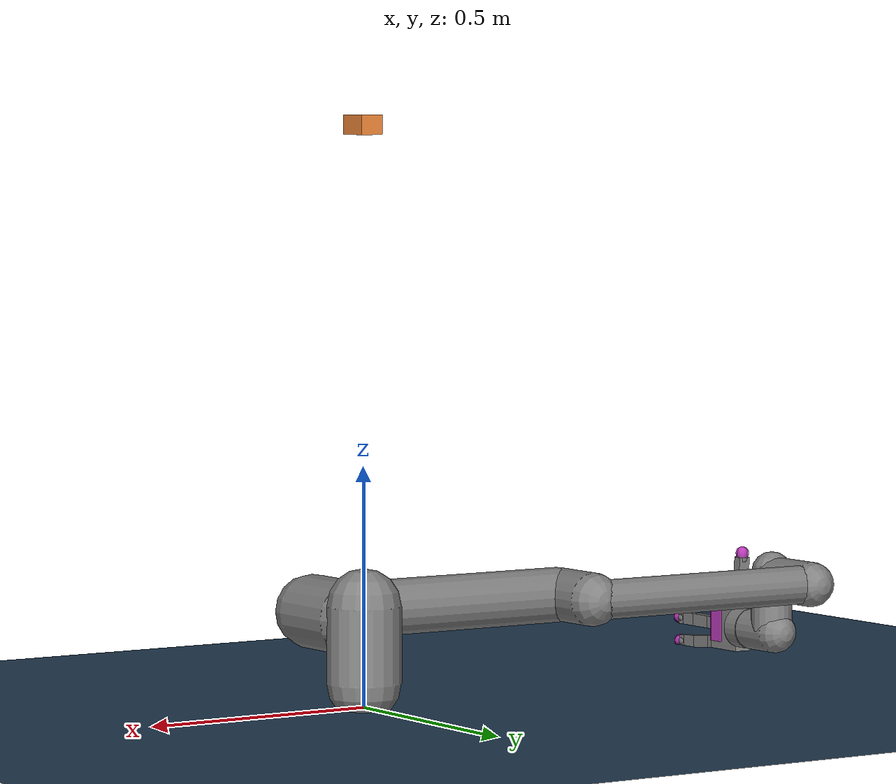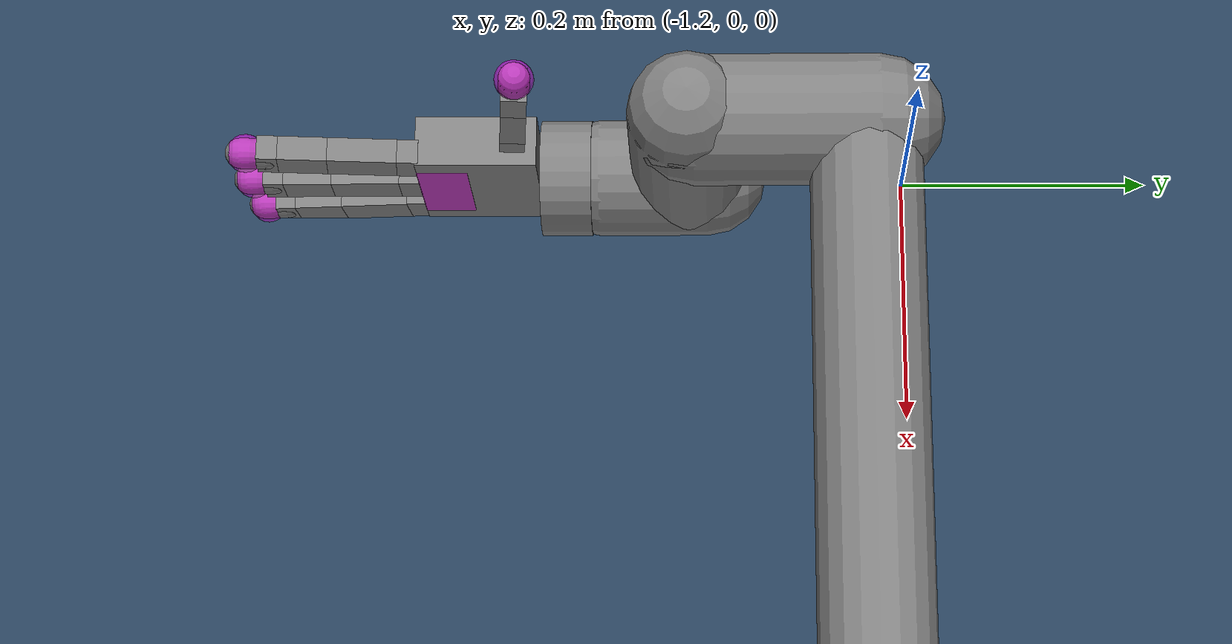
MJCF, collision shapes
<mujoco model="ur10e and Allegro hand scene">
  <compiler angle="radian" meshdir="../assets/" autolimits="true" inertiafromgeom="true" balanceinertia="true"/>
  <extension>
  <!-- If your Python wheel already ships plugins this line is enough: -->
  <plugin plugin="mujoco.sensor.touch_grid"/>

  <!-- If you ever see “unknown plugin …touch_grid”, specify the library: -->
</extension>
  <sensor>
  <!-- Fingertip grid: 8x8, force channels (Fz, Fx, Fy) -->
  <plugin name="ff_tip_grid"
          plugin="mujoco.sensor.touch_grid"
          objtype="site" objname="ff_tip_grid_site">
    <config key="nchannel" value="3"/>    <!-- (z, x, y) = normal + two tangents -->
    <config key="size"     value="20 20"/>  <!-- resolution nx ny -->
    <config key="fov"      value="180 90"/> <!-- degrees; small ≈ planar patch -->
    <config key="gamma"    value="0"/>    <!-- foveal deformation (0 = uniform) -->
  </plugin>

    <plugin name="mf_tip_grid"
          plugin="mujoco.sensor.touch_grid"
          objtype="site" objname="mf_tip_grid_site">
    <config key="nchannel" value="3"/>    <!-- (z, x, y) = normal + two tangents -->
    <config key="size"     value="20 20"/>  <!-- resolution nx ny -->
    <config key="fov"      value="180 90"/> <!-- degrees; small ≈ planar patch -->
    <config key="gamma"    value="0"/>    <!-- foveal deformation (0 = uniform) -->
  </plugin>

    <plugin name="rf_tip_grid"
          plugin="mujoco.sensor.touch_grid"
          objtype="site" objname="rf_tip_grid_site">
    <config key="nchannel" value="3"/>    <!-- (z, x, y) = normal + two tangents -->
    <config key="size"     value="20 20"/>  <!-- resolution nx ny -->
    <config key="fov"      value="180 90"/> <!-- degrees; small ≈ planar patch -->
    <config key="gamma"    value="0"/>    <!-- foveal deformation (0 = uniform) -->
  </plugin>

    <plugin name="th_tip_grid"
          plugin="mujoco.sensor.touch_grid"
          objtype="site" objname="th_tip_grid_site">
    <config key="nchannel" value="3"/>    <!-- (z, x, y) = normal + two tangents -->
    <config key="size"     value="20 20"/>  <!-- resolution nx ny -->
    <config key="fov"      value="180 90"/> <!-- degrees; small ≈ planar patch -->
    <config key="gamma"    value="0"/>    <!-- foveal deformation (0 = uniform) -->
  </plugin>

  <!-- Palm grid: coarser, just normal force to start -->
  <plugin name="palm_grid"
          plugin="mujoco.sensor.touch_grid"
          objtype="site" objname="palm_grid_site">
    <config key="nchannel" value="3"/>    <!-- just Fz (normal) -->
    <config key="size"     value="20 40"/> <!-- wider than tall -->
    <config key="fov"      value="180 90"/>
    <config key="gamma"    value="0"/>
  </plugin>
</sensor>

  <include file="../assets/ur10e/ur10e.xml"/>
  <include file="../assets/allegro/right_hand.xml"/>
  <statistic center="0.4 0 0.4" extent="1"/>

  <visual>
    <headlight diffuse="0.6 0.6 0.6" ambient="0.1 0.1 0.1" specular="0 0 0"/>
    <rgba haze="0.15 0.25 0.35 1"/>
    <global azimuth="120" elevation="-20"/>
  </visual>

  <asset>
    <texture type="skybox" builtin="gradient" rgb1="0.3 0.5 0.7" rgb2="0 0 0" width="512" height="3072"/>
    <texture type="2d" name="groundplane" builtin="checker" mark="edge" rgb1="0.2 0.3 0.4" rgb2="0.1 0.2 0.3"
      markrgb="0.8 0.8 0.8" width="300" height="300"/>
    <material name="groundplane" texture="groundplane" texuniform="true" texrepeat="5 5" reflectance="0.2"/>
  </asset>

  <!-- Soft-ish contact defaults (a little squish & friction) -->
  <default>
    <default class="soft_obj">
      <!-- Contact softness: tune these to taste -->
      <geom condim="3" solref="0.006 1" solimp="0.8 0.8 0.01"
            margin="0.002"
            friction="1.0 0.2 0.0001"
            density="200" rgba="0.9 0.5 0.2 1"/>
    </default>
  </default>

  <worldbody>
    <light pos="0 0 1.5" dir="0 0 -1" directional="true"/>
    <geom name="floor" size="0 0 0.05" type="plane" material="groundplane"/>
    <!-- A small box we'll place above the palm at runtime -->
    <body name="grocery_box" pos="0 0 1.2">
      <joint name="grocery_box_free" type="free" damping="0.1"/>
      <geom name="grocery_geom" class="soft_obj" type="box" mass="0.4" size="0.025 0.035 0.02"/>
    <!-- half-sizes: 25×35×20 mm -->
    </body>
  </worldbody>

  <equality>
    <weld body1="wrist_3_link" body2="palm" solimp="0.99 0.99 0.01" solref="0.001 1"/>
  </equality>

</mujoco>

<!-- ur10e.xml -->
<mujoco model="ur10e">
  <option integrator="implicitfast"/>
  <default>
    <default class="ur10e">
      <material specular="0.5" shininess="0.25"/>
      <joint axis="0 1 0" range="-6.28319 6.28319" armature="0.1"/>
      <position ctrlrange="-6.2831 6.2831"/>
      <general biastype="affine" ctrlrange="-6.2831 6.2831" gainprm="5000" biasprm="0 -5000 -500"/>
      <default class="size4">
        <joint damping="10"/>
        <general forcerange="-330 330"/>
      </default>
      <default class="size3">
        <joint damping="5"/>
        <general forcerange="-150 150"/>
        <default class="size3_limited">
          <joint range="-3.1415 3.1415"/>
          <general ctrlrange="-3.1415 3.1415"/>
        </default>
      </default>
      <default class="size2">
        <joint damping="2"/>
        <general forcerange="-56 56"/>
      </default>
      <default class="visual">
        <geom type="mesh" contype="0" conaffinity="0" group="2"/>
      </default>
      <default class="collision">
        <geom type="capsule" group="3"/>
        <default class="eef_collision">
          <geom type="cylinder"/>
        </default>
      </default>
      <site size="0.001" rgba="0.5 0.5 0.5 0.3" group="4"/>
    </default>
  </default>

  <asset>
    <material class="ur10e" name="black" rgba="0.033 0.033 0.033 1"/>
    <material class="ur10e" name="jointgray" rgba="0.278 0.278 0.278 1"/>
    <material class="ur10e" name="linkgray" rgba="0.82 0.82 0.82 1"/>
    <material class="ur10e" name="urblue" rgba="0.49 0.678 0.8 1"/>

    <mesh file="../ur10e/assets/base_0.obj"/>
    <mesh file="../ur10e/assets/base_1.obj"/>
    <mesh file="../ur10e/assets/shoulder_0.obj"/>
    <mesh file="../ur10e/assets/shoulder_1.obj"/>
    <mesh file="../ur10e/assets/shoulder_2.obj"/>
    <mesh file="../ur10e/assets/upperarm_0.obj"/>
    <mesh file="../ur10e/assets/upperarm_1.obj"/>
    <mesh file="../ur10e/assets/upperarm_2.obj"/>
    <mesh file="../ur10e/assets/upperarm_3.obj"/>
    <mesh file="../ur10e/assets/forearm_0.obj"/>
    <mesh file="../ur10e/assets/forearm_1.obj"/>
    <mesh file="../ur10e/assets/forearm_2.obj"/>
    <mesh file="../ur10e/assets/forearm_3.obj"/>
    <mesh file="../ur10e/assets/wrist1_0.obj"/>
    <mesh file="../ur10e/assets/wrist1_1.obj"/>
    <mesh file="../ur10e/assets/wrist1_2.obj"/>
    <mesh file="../ur10e/assets/wrist2_0.obj"/>
    <mesh file="../ur10e/assets/wrist2_1.obj"/>
    <mesh file="../ur10e/assets/wrist2_2.obj"/>
    <mesh file="../ur10e/assets/wrist3.obj"/>
  </asset>

  <worldbody>
    <light name="spotlight" mode="targetbodycom" target="wrist_2_link" pos="0 -1 2"/>
    <body name="base" quat="0 0 0 -1" childclass="ur10e">
      <site name="base_axis" pos="0 0 0" size="0.01" rgba="1 1 1 0"/>
      <inertial mass="4.0" pos="0 0 0" diaginertia="0.0061063308908 0.0061063308908 0.01125"/>
      <geom mesh="base_0" material="black" class="visual"/>
      <geom mesh="base_1" material="jointgray" class="visual"/>
      <body name="shoulder_link" pos="0 0 0.181">
        <inertial pos="0 0 0" mass="7.778" diaginertia="0.0314743 0.0314743 0.0218756"/>
        <joint name="shoulder_pan_joint" class="size4" axis="0 0 1"/>
        <geom mesh="shoulder_0" material="urblue" class="visual"/>
        <geom mesh="shoulder_1" material="black" class="visual"/>
        <geom mesh="shoulder_2" material="jointgray" class="visual"/>
        <geom class="collision" size="0.078 0.08" pos="0 0 -0.05"/>
        <body name="upper_arm_link" pos="0 0.176 0" quat="1 0 1 0">
          <inertial pos="0 0 0.3065" mass="12.93" diaginertia="0.423074 0.423074 0.0363656"/>
          <joint name="shoulder_lift_joint" class="size4"/>
          <geom mesh="upperarm_0" material="black" class="visual"/>
          <geom mesh="upperarm_1" material="jointgray" class="visual"/>
          <geom mesh="upperarm_2" material="urblue" class="visual"/>
          <geom mesh="upperarm_3" material="linkgray" class="visual"/>
          <geom class="collision" pos="0 -0.05 0" quat="1 1 0 0" size="0.078 0.08"/>
          <geom class="collision" size="0.06 0.3" pos="0 0 0.3"/>
          <body name="forearm_link" pos="0 -0.137 0.613">
            <inertial pos="0 0 0.2855" mass="3.87" diaginertia="0.11059 0.11059 0.0108844"/>
            <joint name="elbow_joint" class="size3_limited"/>
            <geom mesh="forearm_0" material="urblue" class="visual"/>
            <geom mesh="forearm_1" material="black" class="visual"/>
            <geom mesh="forearm_2" material="jointgray" class="visual"/>
            <geom mesh="forearm_3" material="linkgray" class="visual"/>
            <geom class="collision" pos="0 0.08 0" quat="1 1 0 0" size="0.058 0.065"/>
            <geom class="collision" size="0.043 0.28" pos="0 0 0.29"/>
            <body name="wrist_1_link" pos="0 0 0.571" quat="1 0 1 0">
              <inertial pos="0 0.135 0" quat="0.5 0.5 -0.5 0.5" mass="1.96"
                diaginertia="0.0055125 0.00510825 0.00510825"/>
              <joint name="wrist_1_joint" class="size2"/>
              <geom mesh="wrist1_0" material="black" class="visual"/>
              <geom mesh="wrist1_1" material="urblue" class="visual"/>
              <geom mesh="wrist1_2" material="jointgray" class="visual"/>
              <geom class="collision" pos="0 0.06 0" quat="1 1 0 0" size="0.05 0.07"/>
              <body name="wrist_2_link" pos="0 0.135 0">
                <inertial pos="0 0 0.12" quat="0.5 0.5 -0.5 0.5" mass="1.96"
                  diaginertia="0.0055125 0.00510825 0.00510825"/>
                <joint name="wrist_2_joint" axis="0 0 1" class="size2"/>
                <geom mesh="wrist2_0" material="black" class="visual"/>
                <geom mesh="wrist2_1" material="urblue" class="visual"/>
                <geom mesh="wrist2_2" material="jointgray" class="visual"/>
                <geom class="collision" size="0.046 0.065" pos="0 0 0.05"/>
                <geom class="collision" pos="0 0.028 0.12" quat="1 1 0 0" size="0.046 0.043"/>
                <body name="wrist_3_link" pos="0 0 0.12">
                  <site name="wrist_axis" pos="0 0 0" size="0.01" rgba="1 1 1 0"/>
                  <inertial pos="0 0.092 0" quat="0 1 -1 0" mass="0.202"
                    diaginertia="0.000204525 0.000144346 0.000144346"/>
                  <joint name="wrist_3_joint" class="size2"/>
                  <geom material="linkgray" mesh="wrist3" class="visual"/>
                  <geom class="eef_collision" pos="0 0.097 0" quat="1 1 0 0" size="0.046 0.02"/>
                  <site name="attachment_site" pos="0 0.1 0" quat="-1 1 0 0"/>
                </body>
              </body>
            </body>
          </body>
        </body>
      </body>
    </body>
  </worldbody>

  <!-- Excluir colisiones entre eslabones consecutivos -->
  <contact>
    <exclude body1="base"           body2="shoulder_link"/>
    <exclude body1="shoulder_link"  body2="upper_arm_link"/>
    <exclude body1="upper_arm_link" body2="forearm_link"/>
    <exclude body1="forearm_link"   body2="wrist_1_link"/>
    <exclude body1="wrist_1_link"   body2="wrist_2_link"/>
    <exclude body1="wrist_2_link"   body2="wrist_3_link"/>
  </contact>

  <actuator>
    <general class="size4" name="shoulder_pan" joint="shoulder_pan_joint"/>
    <general class="size4" name="shoulder_lift" joint="shoulder_lift_joint"/>
    <general class="size3_limited" name="elbow" joint="elbow_joint"/>
    <general class="size2" name="wrist_1" joint="wrist_1_joint"/>
    <general class="size2" name="wrist_2" joint="wrist_2_joint"/>
    <general class="size2" name="wrist_3" joint="wrist_3_joint"/>
  </actuator>

</mujoco>

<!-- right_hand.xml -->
<mujoco model="allegro_right">
  <!-- Match your repo layout (included from mj/full_combined.xml) -->
  <compiler angle="radian" meshdir="../assets/allegro/assets/" autolimits="true"/>

  <option cone="elliptic" impratio="10"/>

  <!-- Defaults: all Allegro-specific classes are prefixed algr_* to avoid collisions -->
  <default>
    <default class="allegro_right">
      <joint axis="0 1 0" damping=".1"/>
      <position kp="1"/>
      <geom density="800"/>

      <!-- Visual defaults (renamed) -->
      <default class="algr_visual">
        <geom type="mesh" contype="0" conaffinity="0" group="2" material="algr_black"/>
        <default class="algr_palm_visual">
          <geom mesh="base_link"/>
        </default>
        <default class="algr_base_visual">
          <geom mesh="link_0.0"/>
        </default>
        <default class="algr_proximal_visual">
          <geom mesh="link_1.0"/>
        </default>
        <default class="algr_medial_visual">
          <geom mesh="link_2.0"/>
        </default>
        <default class="algr_distal_visual">
          <geom mesh="link_3.0"/>
        </default>
        <default class="algr_fingertip_visual">
          <geom pos="0 0 0.0267" material="algr_white" mesh="link_3.0_tip"/>
        </default>
        <default class="algr_thumbtip_visual">
          <geom pos="0 0 0.0423" material="algr_white" mesh="link_15.0_tip"/>
        </default>
      </default>

      <!-- Collision defaults (renamed) -->
      <default class="algr_collision">
        <geom group="3" type="box" mass="0"/>
        <default class="algr_palm_collision">
          <geom size="0.0204 0.0565 0.0475" pos="-0.0093 0 -0.0475"/>
        </default>
        <default class="algr_base_collision">
          <geom size="0.0098 0.01375 0.0082" pos="0 0 0.0082"/>
          <default class="algr_thumb_base_collision">
            <geom size="0.0179 0.017 0.02275" pos="-0.0179 0.009 0.0145"/>
          </default>
        </default>
        <default class="algr_proximal_collision">
          <geom size="0.0098 0.01375 0.027" pos="0 0 0.027"/>
          <default class="algr_thumb_proximal_collision">
            <geom size="0.0098 0.01375 0.00885" pos="0 0 0.00885"/>
          </default>
        </default>
        <default class="algr_medial_collision">
          <geom size="0.0098 0.01375 0.0192" pos="0 0 0.0192"/>
          <default class="algr_thumb_medial_collision">
            <geom size="0.0098 0.01375 0.0257" pos="0 0 0.0257"/>
          </default>
        </default>
        <default class="algr_distal_collision">
          <geom size="0.0098 0.01375 0.008" pos="0 0 0.008"/>
          <default class="algr_thumb_distal_collision">
            <geom size="0.0098 0.01375 0.0157" pos="0 0 0.0157"/>
          </default>
        </default>
        <default class="algr_fingertip_collision">
          <geom type="capsule" size="0.012 0.01" pos="0 0 0.019"/>
          <default class="algr_thumbtip_collision">
            <geom type="capsule" size="0.012 0.008" pos="0 0 0.035"/>
          </default>
        </default>
      </default>

      <!-- These actuator/joint default classes don't collide with UR; keep as-is -->
      <default class="base">
        <joint axis="0 0 1" range="-0.47 0.47"/>
        <position ctrlrange="-0.47 0.47"/>
      </default>
      <default class="proximal">
        <joint range="-0.196 1.61"/>
        <position ctrlrange="-0.196 1.61"/>
      </default>
      <default class="medial">
        <joint range="-0.174 1.709"/>
        <position ctrlrange="-0.174 1.709"/>
      </default>
      <default class="distal">
        <joint range="-0.227 1.618"/>
        <position ctrlrange="-0.227 1.618"/>
      </default>
      <default class="thumb_base">
        <joint axis="-1 0 0" range="0.263 1.396"/>
        <position ctrlrange="0.263 1.396"/>
      </default>
      <default class="thumb_proximal">
        <joint axis="0 0 1" range="-0.105 1.163"/>
        <position ctrlrange="-0.105 1.163"/>
      </default>
      <default class="thumb_medial">
        <joint range="-0.189 1.644"/>
        <position ctrlrange="-0.189 1.644"/>
      </default>
      <default class="thumb_distal">
        <joint range="-0.162 1.719"/>
        <position ctrlrange="-0.162 1.719"/>
      </default>
    </default>
  </default>

  <!-- Unique material names to avoid conflicts with UR's "black"/"white" -->
  <asset>
    <material name="algr_black" rgba="0.2 0.2 0.2 1"/>
    <material name="algr_white" rgba="0.9 0.9 0.9 1"/>

    <mesh file="../allegro/assets/base_link.stl"/>
    <mesh file="../allegro/assets/link_0.0.stl"/>
    <mesh file="../allegro/assets/link_1.0.stl"/>
    <mesh file="../allegro/assets/link_2.0.stl"/>
    <mesh file="../allegro/assets/link_3.0.stl"/>
    <mesh file="../allegro/assets/link_3.0_tip.stl"/>
    <mesh file="../allegro/assets/link_12.0_right.stl"/>
    <mesh file="../allegro/assets/link_13.0.stl"/>
    <mesh file="../allegro/assets/link_14.0.stl"/>
    <mesh file="../allegro/assets/link_15.0.stl"/>
    <mesh file="../allegro/assets/link_15.0_tip.stl"/>
  </asset>

  <worldbody>
    <body name="palm" pos="-1.184000 -0.388000 0.061000" quat="0.707107 0.707107 0.000000 0.000000" childclass="allegro_right">
      <site name="palm_axis" pos="0 0 0" size="0.01" rgba="1 1 1 0"/>
      <site name="palm_grid_site"
      type="box" size="0.02 0.04 0.002"
      pos="0.01 0.0 -0.02"
      quat="0.70710678 0 0.70710678 0"
      rgba="1 0 1 0.5"/>
      <joint name="palm_free" type="free"/>
      <geom class="algr_palm_visual"/>
      <geom class="algr_palm_collision"/>

      <!-- First finger -->
      <body name="ff_base" pos="0 0.0435 -0.001542" quat="0.999048 -0.0436194 0 0">
        <joint name="ffj0" class="base"/>
        <geom class="algr_base_visual"/>
        <geom class="algr_base_collision"/>
        <body name="ff_proximal" pos="0 0 0.0164">
          <joint name="ffj1" class="proximal"/>
          <geom class="algr_proximal_visual"/>
          <geom class="algr_proximal_collision"/>
          <body name="ff_medial" pos="0 0 0.054">
            <joint name="ffj2" class="medial"/>
            <geom class="algr_medial_visual"/>
            <geom class="algr_medial_collision"/>
            <body name="ff_distal" pos="0 0 0.0384">
              <joint name="ffj3" class="distal"/>
              <geom class="algr_distal_visual"/>
              <geom class="algr_distal_collision"/>
              <body name="ff_tip">
                <site name="ff_tip_grid_site"
                  pos="0 0 0.025"
                  quat="1 0 0 0"
                  type="sphere" size="0.015"
                  rgba="1 0 1 0.5"/>
                <geom class="algr_fingertip_visual"/>
                <geom class="algr_fingertip_collision"/>
              </body>
            </body>
          </body>
        </body>
      </body>

      <!-- Middle finger -->
      <body name="mf_base" pos="0 0 0.0007">
        <joint name="mfj0" class="base"/>
        <geom class="algr_base_visual"/>
        <geom class="algr_base_collision"/>
        <body name="mf_proximal" pos="0 0 0.0164">
          <joint name="mfj1" class="proximal"/>
          <geom class="algr_proximal_visual"/>
          <geom class="algr_proximal_collision"/>
          <body name="mf_medial" pos="0 0 0.054">
            <joint name="mfj2" class="medial"/>
            <geom class="algr_medial_visual"/>
            <geom class="algr_medial_collision"/>
            <body name="mf_distal" pos="0 0 0.0384">
              <joint name="mfj3" class="distal"/>
              <geom class="algr_distal_visual"/>
              <geom class="algr_distal_collision"/>
              <body name="mf_tip">
                <site name="mf_tip_grid_site"
                  pos="0 0 0.025"
                  quat="1 0 0 0"
                  type="sphere" size="0.015"
                  rgba="1 0 1 0.5"/>
                <geom class="algr_fingertip_visual"/>
                <geom class="algr_fingertip_collision"/>
              </body>
            </body>
          </body>
        </body>
      </body>

      <!-- Ring finger -->
      <body name="rf_base" pos="0 -0.0435 -0.001542" quat="0.999048 0.0436194 0 0">
        <joint name="rfj0" class="base"/>
        <geom class="algr_base_visual"/>
        <geom class="algr_base_collision"/>
        <body name="rf_proximal" pos="0 0 0.0164">
          <joint name="rfj1" class="proximal"/>
          <geom class="algr_proximal_visual"/>
          <geom class="algr_proximal_collision"/>
          <body name="rf_medial" pos="0 0 0.054">
            <joint name="rfj2" class="medial"/>
            <geom class="algr_medial_visual"/>
            <geom class="algr_medial_collision"/>
            <body name="rf_distal" pos="0 0 0.0384">
              <joint name="rfj3" class="distal"/>
              <geom class="algr_distal_visual"/>
              <geom class="algr_distal_collision"/>
              <body name="rf_tip">
                <site name="rf_tip_grid_site"
                  pos="0 0 0.025"
                  quat="1 0 0 0"
                  type="sphere" size="0.015"
                  rgba="1 0 1 0.5"/>
                <geom class="algr_fingertip_visual"/>
                <geom class="algr_fingertip_collision"/>
              </body>
            </body>
          </body>
        </body>
      </body>

      <!-- Thumb -->
      <body name="th_base" pos="-0.0182 0.019333 -0.045987" quat="0.477714 -0.521334 -0.521334 -0.477714">
        <joint name="thj0" class="thumb_base"/>
        <geom class="algr_visual" mesh="link_12.0_right"/>
        <geom class="algr_thumb_base_collision"/>
        <body name="th_proximal" pos="-0.027 0.005 0.0399">
          <joint name="thj1" class="thumb_proximal"/>
          <geom class="algr_visual" mesh="link_13.0"/>
          <geom class="algr_thumb_proximal_collision"/>
          <body name="th_medial" pos="0 0 0.0177">
            <joint name="thj2" class="thumb_medial"/>
            <geom class="algr_visual" mesh="link_14.0"/>
            <geom class="algr_thumb_medial_collision"/>
            <body name="th_distal" pos="0 0 0.0514">
              <joint name="thj3" class="thumb_distal"/>
              <geom class="algr_visual" mesh="link_15.0"/>
              <geom class="algr_thumb_distal_collision"/>
              <body name="th_tip">
                <site name="th_tip_grid_site"
                  pos="0 0 0.040"
                  quat="1 0 0 0"
                  type="sphere" size="0.015"
                  rgba="1 0 1 0.5"/>
                <geom class="algr_thumbtip_visual"/>
                <geom class="algr_thumbtip_collision"/>
              </body>
            </body>
          </body>
        </body>
      </body>
    </body>
  </worldbody>

  <contact>
    <exclude body1="palm" body2="ff_base"/>
    <exclude body1="palm" body2="mf_base"/>
    <exclude body1="palm" body2="rf_base"/>
    <exclude body1="palm" body2="th_base"/>
    <exclude body1="palm" body2="th_proximal"/>
  </contact>

  <actuator>
    <position name="ffa0" joint="ffj0" class="base"/>
    <position name="ffa1" joint="ffj1" class="proximal"/>
    <position name="ffa2" joint="ffj2" class="medial"/>
    <position name="ffa3" joint="ffj3" class="distal"/>
    <position name="mfa0" joint="mfj0" class="base"/>
    <position name="mfa1" joint="mfj1" class="proximal"/>
    <position name="mfa2" joint="mfj2" class="medial"/>
    <position name="mfa3" joint="mfj3" class="distal"/>
    <position name="rfa0" joint="rfj0" class="base"/>
    <position name="rfa1" joint="rfj1" class="proximal"/>
    <position name="rfa2" joint="rfj2" class="medial"/>
    <position name="rfa3" joint="rfj3" class="distal"/>
    <position name="tha0" joint="thj0" class="thumb_base"/>
    <position name="tha1" joint="thj1" class="thumb_proximal"/>
    <position name="tha2" joint="thj2" class="thumb_medial"/>
    <position name="tha3" joint="thj3" class="thumb_distal"/>
  </actuator>
</mujoco>
